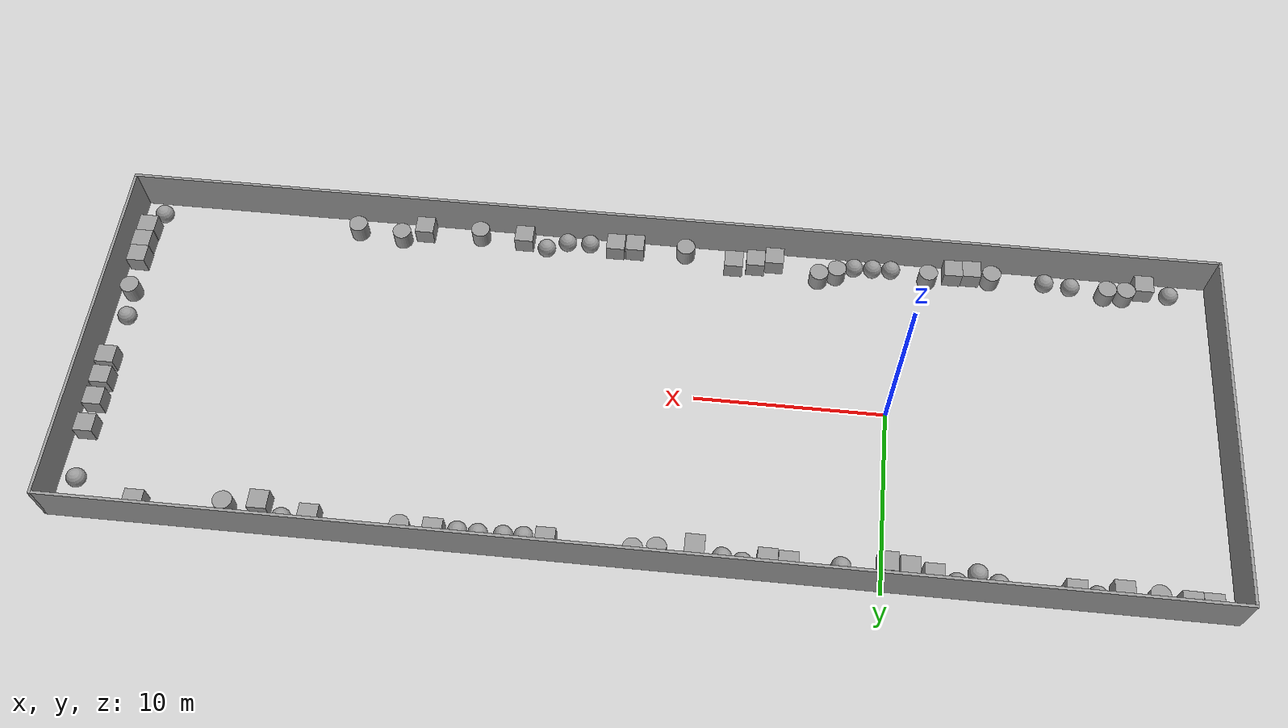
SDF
<sdf version="1.7">
 <world name="default">
  <light name="sun" type="directional">
   <pose>0 0 10 0 -0 0</pose>
   <diffuse>0.8 0.8 0.8 1</diffuse>
   <specular>0.2 0.2 0.2 1</specular>
   <attenuation>
    <range>1000</range>
    <constant>0.9</constant>
    <linear>0.01</linear>
    <quadratic>0.001</quadratic>
   </attenuation>
   <direction>-0.5 0.1 -0.9</direction>
   <spot><inner_angle>0</inner_angle><outer_angle>0</outer_angle><falloff>0</falloff></spot>
  </light>
  <model name="ground_plane">
   <static>1</static>
   <link name="link">
    <collision name="collision">
     <geometry><plane><normal>0 0 1</normal><size>100 100</size></plane></geometry>
     <surface>
      <contact><collide_bitmask>65535</collide_bitmask></contact>
      <friction><ode><mu>100</mu><mu2>50</mu2></ode></friction>
     </surface>
    </collision>
    <visual name="visual">
     <cast_shadows>0</cast_shadows>
     <geometry><plane><normal>0 0 1</normal><size>100 100</size></plane></geometry>
     <material>
      <script><uri>file://media/materials/scripts/gazebo.material</uri><name>Gazebo/Grey</name></script>
     </material>
    </visual>
   </link>
  </model>
  <gravity>0 0 -9.8</gravity>
  <magnetic_field>6e-06 2.3e-05 -4.2e-05</magnetic_field>
  <atmosphere type="adiabatic"/>
  <physics type="ode">
   <max_step_size>0.001</max_step_size>
   <real_time_factor>1</real_time_factor>
   <real_time_update_rate>1000</real_time_update_rate>
  </physics>
  <scene><ambient>0.4 0.4 0.4 1</ambient><background>0.7 0.7 0.7 1</background><shadows>1</shadows></scene>
  <spherical_coordinates>
   <surface_model>EARTH_WGS84</surface_model>
   <latitude_deg>0</latitude_deg>
   <longitude_deg>0</longitude_deg>
   <elevation>0</elevation>
   <heading_deg>0</heading_deg>
  </spherical_coordinates>
  <model name="big_empty">
   <pose>12.2902 0.0813 0 0 -0 0</pose>
   <link name="Wall_6">
    <collision name="Wall_6_Collision">
     <geometry><box><size>59.25 0.15 2.5</size></box></geometry>
     <pose>0 0 1.25 0 -0 0</pose>
    </collision>
    <visual name="Wall_6_Visual">
     <pose>0 0 1.25 0 -0 0</pose>
     <geometry><box><size>59.25 0.15 2.5</size></box></geometry>
     <material>
      <script><uri>file://media/materials/scripts/gazebo.material</uri><name>Gazebo/Grey</name></script>
      <ambient>1 1 1 1</ambient>
     </material>
     <meta><layer>0</layer></meta>
    </visual>
    <pose>-0 9.675 0 0 -0 0</pose>
   </link>
   <link name="Wall_7">
    <collision name="Wall_7_Collision">
     <geometry><box><size>19.5 0.15 2.5</size></box></geometry>
     <pose>0 0 1.25 0 -0 0</pose>
    </collision>
    <visual name="Wall_7_Visual">
     <pose>0 0 1.25 0 -0 0</pose>
     <geometry><box><size>19.5 0.15 2.5</size></box></geometry>
     <material>
      <script><uri>file://media/materials/scripts/gazebo.material</uri><name>Gazebo/Grey</name></script>
      <ambient>1 1 1 1</ambient>
     </material>
     <meta><layer>0</layer></meta>
    </visual>
    <pose>29.55 0 0 0 -0 -1.5708</pose>
   </link>
   <link name="Wall_8">
    <collision name="Wall_8_Collision">
     <geometry><box><size>59.25 0.15 2.5</size></box></geometry>
     <pose>0 0 1.25 0 -0 0</pose>
    </collision>
    <visual name="Wall_8_Visual">
     <pose>0 0 1.25 0 -0 0</pose>
     <geometry><box><size>59.25 0.15 2.5</size></box></geometry>
     <material>
      <script><uri>file://media/materials/scripts/gazebo.material</uri><name>Gazebo/Grey</name></script>
      <ambient>1 1 1 1</ambient>
     </material>
     <meta><layer>0</layer></meta>
    </visual>
    <pose>-0 -9.675 0 0 -0 3.14159</pose>
   </link>
   <link name="Wall_9">
    <collision name="Wall_9_Collision">
     <geometry><box><size>19.5 0.15 2.5</size></box></geometry>
     <pose>0 0 1.25 0 -0 0</pose>
    </collision>
    <visual name="Wall_9_Visual">
     <pose>0 0 1.25 0 -0 0</pose>
     <geometry><box><size>19.5 0.15 2.5</size></box></geometry>
     <material>
      <script><uri>file://media/materials/scripts/gazebo.material</uri><name>Gazebo/Grey</name></script>
      <ambient>1 1 1 1</ambient>
     </material>
     <meta><layer>0</layer></meta>
    </visual>
    <pose>-29.55 0 0 0 -0 1.5708</pose>
   </link>
   <static>1</static>
  </model>
  <model name="unit_sphere">
   <pose>-15.0549 -8.56888 0.5 0 -0 0</pose>
   <link name="link">
    <inertial>
     <mass>1</mass>
     <inertia><ixx>0.1</ixx><ixy>0</ixy><ixz>0</ixz><iyy>0.1</iyy><iyz>0</iyz><izz>0.1</izz></inertia>
    </inertial>
    <collision name="collision"><geometry><sphere><radius>0.5</radius></sphere></geometry></collision>
    <visual name="visual">
     <geometry><sphere><radius>0.5</radius></sphere></geometry>
     <material>
      <script><name>Gazebo/Grey</name><uri>file://media/materials/scripts/gazebo.material</uri></script>
     </material>
    </visual>
   </link>
  </model>
  <model name="unit_sphere_clone">
   <pose>-9.77617 -8.61735 0.5 0 -0 0</pose>
   <link name="link">
    <inertial>
     <mass>1</mass>
     <inertia><ixx>0.1</ixx><ixy>0</ixy><ixz>0</ixz><iyy>0.1</iyy><iyz>0</iyz><izz>0.1</izz></inertia>
    </inertial>
    <collision name="collision"><geometry><sphere><radius>0.5</radius></sphere></geometry></collision>
    <visual name="visual">
     <geometry><sphere><radius>0.5</radius></sphere></geometry>
     <material>
      <script><name>Gazebo/Grey</name><uri>file://media/materials/scripts/gazebo.material</uri></script>
     </material>
    </visual>
   </link>
  </model>
  <model name="unit_sphere_clone_0">
   <pose>-8.37955 -8.7271 0.5 0 -0 0</pose>
   <link name="link">
    <inertial>
     <mass>1</mass>
     <inertia><ixx>0.1</ixx><ixy>0</ixy><ixz>0</ixz><iyy>0.1</iyy><iyz>0</iyz><izz>0.1</izz></inertia>
    </inertial>
    <collision name="collision"><geometry><sphere><radius>0.5</radius></sphere></geometry></collision>
    <visual name="visual">
     <geometry><sphere><radius>0.5</radius></sphere></geometry>
     <material>
      <script><name>Gazebo/Grey</name><uri>file://media/materials/scripts/gazebo.material</uri></script>
     </material>
    </visual>
   </link>
  </model>
  <model name="unit_sphere_clone_1">
   <pose>-0.04792 -8.77374 0.5 0.000601 -0.018035 -1.9e-05</pose>
   <link name="link">
    <inertial>
     <mass>1</mass>
     <inertia><ixx>0.1</ixx><ixy>0</ixy><ixz>0</ixz><iyy>0.1</iyy><iyz>0</iyz><izz>0.1</izz></inertia>
    </inertial>
    <collision name="collision"><geometry><sphere><radius>0.5</radius></sphere></geometry></collision>
    <visual name="visual">
     <geometry><sphere><radius>0.5</radius></sphere></geometry>
     <material>
      <script><name>Gazebo/Grey</name><uri>file://media/materials/scripts/gazebo.material</uri></script>
     </material>
    </visual>
   </link>
  </model>
  <model name="unit_sphere_clone_2">
   <pose>0.955145 -8.74192 0.5 -7.4e-05 -0.001739 -4.2e-05</pose>
   <link name="link">
    <inertial>
     <mass>1</mass>
     <inertia><ixx>0.1</ixx><ixy>0</ixy><ixz>0</ixz><iyy>0.1</iyy><iyz>0</iyz><izz>0.1</izz></inertia>
    </inertial>
    <collision name="collision"><geometry><sphere><radius>0.5</radius></sphere></geometry></collision>
    <visual name="visual">
     <geometry><sphere><radius>0.5</radius></sphere></geometry>
     <material>
      <script><name>Gazebo/Grey</name><uri>file://media/materials/scripts/gazebo.material</uri></script>
     </material>
    </visual>
   </link>
  </model>
  <model name="unit_sphere_clone_3">
   <pose>1.96471 -8.71335 0.5 -0.0004 0.010287 -3e-05</pose>
   <link name="link">
    <inertial>
     <mass>1</mass>
     <inertia><ixx>0.1</ixx><ixy>0</ixy><ixz>0</ixz><iyy>0.1</iyy><iyz>0</iyz><izz>0.1</izz></inertia>
    </inertial>
    <collision name="collision"><geometry><sphere><radius>0.5</radius></sphere></geometry></collision>
    <visual name="visual">
     <geometry><sphere><radius>0.5</radius></sphere></geometry>
     <material>
      <script><name>Gazebo/Grey</name><uri>file://media/materials/scripts/gazebo.material</uri></script>
     </material>
    </visual>
   </link>
  </model>
  <model name="unit_sphere_clone_4">
   <pose>16.535 -8.86079 0.5 0 -0 0</pose>
   <link name="link">
    <inertial>
     <mass>1</mass>
     <inertia><ixx>0.1</ixx><ixy>0</ixy><ixz>0</ixz><iyy>0.1</iyy><iyz>0</iyz><izz>0.1</izz></inertia>
    </inertial>
    <collision name="collision"><geometry><sphere><radius>0.5</radius></sphere></geometry></collision>
    <visual name="visual">
     <geometry><sphere><radius>0.5</radius></sphere></geometry>
     <material>
      <script><name>Gazebo/Grey</name><uri>file://media/materials/scripts/gazebo.material</uri></script>
     </material>
    </visual>
   </link>
  </model>
  <model name="unit_sphere_clone_5">
   <pose>17.7918 -8.83107 0.5 0 -0 0</pose>
   <link name="link">
    <inertial>
     <mass>1</mass>
     <inertia><ixx>0.1</ixx><ixy>0</ixy><ixz>0</ixz><iyy>0.1</iyy><iyz>0</iyz><izz>0.1</izz></inertia>
    </inertial>
    <collision name="collision"><geometry><sphere><radius>0.5</radius></sphere></geometry></collision>
    <visual name="visual">
     <geometry><sphere><radius>0.5</radius></sphere></geometry>
     <material>
      <script><name>Gazebo/Grey</name><uri>file://media/materials/scripts/gazebo.material</uri></script>
     </material>
    </visual>
   </link>
  </model>
  <model name="unit_sphere_clone_6">
   <pose>18.8957 -8.34964 0.5 0 -0 0</pose>
   <link name="link">
    <inertial>
     <mass>1</mass>
     <inertia><ixx>0.1</ixx><ixy>0</ixy><ixz>0</ixz><iyy>0.1</iyy><iyz>0</iyz><izz>0.1</izz></inertia>
    </inertial>
    <collision name="collision"><geometry><sphere><radius>0.5</radius></sphere></geometry></collision>
    <visual name="visual">
     <geometry><sphere><radius>0.5</radius></sphere></geometry>
     <material>
      <script><name>Gazebo/Grey</name><uri>file://media/materials/scripts/gazebo.material</uri></script>
     </material>
    </visual>
   </link>
  </model>
  <model name="unit_sphere_clone_7">
   <pose>40.5129 -8.51497 0.5 0 -0 0</pose>
   <link name="link">
    <inertial>
     <mass>1</mass>
     <inertia><ixx>0.1</ixx><ixy>0</ixy><ixz>0</ixz><iyy>0.1</iyy><iyz>0</iyz><izz>0.1</izz></inertia>
    </inertial>
    <collision name="collision"><geometry><sphere><radius>0.5</radius></sphere></geometry></collision>
    <visual name="visual">
     <geometry><sphere><radius>0.5</radius></sphere></geometry>
     <material>
      <script><name>Gazebo/Grey</name><uri>file://media/materials/scripts/gazebo.material</uri></script>
     </material>
    </visual>
   </link>
  </model>
  <model name="unit_sphere_clone_8">
   <pose>40.7877 -1.75539 0.5 0 -0 0</pose>
   <link name="link">
    <inertial>
     <mass>1</mass>
     <inertia><ixx>0.1</ixx><ixy>0</ixy><ixz>0</ixz><iyy>0.1</iyy><iyz>0</iyz><izz>0.1</izz></inertia>
    </inertial>
    <collision name="collision"><geometry><sphere><radius>0.5</radius></sphere></geometry></collision>
    <visual name="visual">
     <geometry><sphere><radius>0.5</radius></sphere></geometry>
     <material>
      <script><name>Gazebo/Grey</name><uri>file://media/materials/scripts/gazebo.material</uri></script>
     </material>
    </visual>
   </link>
  </model>
  <model name="unit_sphere_clone_9">
   <pose>40.7231 7.91261 0.5 0 -0 0</pose>
   <link name="link">
    <inertial>
     <mass>1</mass>
     <inertia><ixx>0.1</ixx><ixy>0</ixy><ixz>0</ixz><iyy>0.1</iyy><iyz>0</iyz><izz>0.1</izz></inertia>
    </inertial>
    <collision name="collision"><geometry><sphere><radius>0.5</radius></sphere></geometry></collision>
    <visual name="visual">
     <geometry><sphere><radius>0.5</radius></sphere></geometry>
     <material>
      <script><name>Gazebo/Grey</name><uri>file://media/materials/scripts/gazebo.material</uri></script>
     </material>
    </visual>
   </link>
  </model>
  <model name="unit_sphere_clone_10">
   <pose>29.9219 9.03908 0.5 0 -0 0</pose>
   <link name="link">
    <inertial>
     <mass>1</mass>
     <inertia><ixx>0.1</ixx><ixy>0</ixy><ixz>0</ixz><iyy>0.1</iyy><iyz>0</iyz><izz>0.1</izz></inertia>
    </inertial>
    <collision name="collision"><geometry><sphere><radius>0.5</radius></sphere></geometry></collision>
    <visual name="visual">
     <geometry><sphere><radius>0.5</radius></sphere></geometry>
     <material>
      <script><name>Gazebo/Grey</name><uri>file://media/materials/scripts/gazebo.material</uri></script>
     </material>
    </visual>
   </link>
  </model>
  <model name="unit_sphere_clone_11">
   <pose>21.0639 8.8868 0.5 0 -0 0</pose>
   <link name="link">
    <inertial>
     <mass>1</mass>
     <inertia><ixx>0.1</ixx><ixy>0</ixy><ixz>0</ixz><iyy>0.1</iyy><iyz>0</iyz><izz>0.1</izz></inertia>
    </inertial>
    <collision name="collision"><geometry><sphere><radius>0.5</radius></sphere></geometry></collision>
    <visual name="visual">
     <geometry><sphere><radius>0.5</radius></sphere></geometry>
     <material>
      <script><name>Gazebo/Grey</name><uri>file://media/materials/scripts/gazebo.material</uri></script>
     </material>
    </visual>
   </link>
  </model>
  <model name="unit_sphere_clone_12">
   <pose>20.0298 8.91341 0.5 0 -0 0</pose>
   <link name="link">
    <inertial>
     <mass>1</mass>
     <inertia><ixx>0.1</ixx><ixy>0</ixy><ixz>0</ixz><iyy>0.1</iyy><iyz>0</iyz><izz>0.1</izz></inertia>
    </inertial>
    <collision name="collision"><geometry><sphere><radius>0.5</radius></sphere></geometry></collision>
    <visual name="visual">
     <geometry><sphere><radius>0.5</radius></sphere></geometry>
     <material>
      <script><name>Gazebo/Grey</name><uri>file://media/materials/scripts/gazebo.material</uri></script>
     </material>
    </visual>
   </link>
  </model>
  <model name="unit_sphere_clone_13">
   <pose>18.7604 8.88385 0.5 -0.000335 0.010044 -1.5e-05</pose>
   <link name="link">
    <inertial>
     <mass>1</mass>
     <inertia><ixx>0.1</ixx><ixy>0</ixy><ixz>0</ixz><iyy>0.1</iyy><iyz>0</iyz><izz>0.1</izz></inertia>
    </inertial>
    <collision name="collision"><geometry><sphere><radius>0.5</radius></sphere></geometry></collision>
    <visual name="visual">
     <geometry><sphere><radius>0.5</radius></sphere></geometry>
     <material>
      <script><name>Gazebo/Grey</name><uri>file://media/materials/scripts/gazebo.material</uri></script>
     </material>
    </visual>
   </link>
  </model>
  <model name="unit_sphere_clone_14">
   <pose>17.7509 8.85398 0.5 0.000353 -0.010007 -1.5e-05</pose>
   <link name="link">
    <inertial>
     <mass>1</mass>
     <inertia><ixx>0.1</ixx><ixy>0</ixy><ixz>0</ixz><iyy>0.1</iyy><iyz>0</iyz><izz>0.1</izz></inertia>
    </inertial>
    <collision name="collision"><geometry><sphere><radius>0.5</radius></sphere></geometry></collision>
    <visual name="visual">
     <geometry><sphere><radius>0.5</radius></sphere></geometry>
     <material>
      <script><name>Gazebo/Grey</name><uri>file://media/materials/scripts/gazebo.material</uri></script>
     </material>
    </visual>
   </link>
  </model>
  <model name="unit_sphere_clone_15">
   <pose>7.88446 8.97172 0.5 0.0017 0.009924 2.5e-05</pose>
   <link name="link">
    <inertial>
     <mass>1</mass>
     <inertia><ixx>0.1</ixx><ixy>0</ixy><ixz>0</ixz><iyy>0.1</iyy><iyz>0</iyz><izz>0.1</izz></inertia>
    </inertial>
    <collision name="collision"><geometry><sphere><radius>0.5</radius></sphere></geometry></collision>
    <visual name="visual">
     <geometry><sphere><radius>0.5</radius></sphere></geometry>
     <material>
      <script><name>Gazebo/Grey</name><uri>file://media/materials/scripts/gazebo.material</uri></script>
     </material>
    </visual>
   </link>
  </model>
  <model name="unit_sphere_clone_16">
   <pose>6.88897 9.14222 0.5 -0.0018 -0.009881 2.5e-05</pose>
   <link name="link">
    <inertial>
     <mass>1</mass>
     <inertia><ixx>0.1</ixx><ixy>0</ixy><ixz>0</ixz><iyy>0.1</iyy><iyz>0</iyz><izz>0.1</izz></inertia>
    </inertial>
    <collision name="collision"><geometry><sphere><radius>0.5</radius></sphere></geometry></collision>
    <visual name="visual">
     <geometry><sphere><radius>0.5</radius></sphere></geometry>
     <material>
      <script><name>Gazebo/Grey</name><uri>file://media/materials/scripts/gazebo.material</uri></script>
     </material>
    </visual>
   </link>
  </model>
  <model name="unit_sphere_clone_17">
   <pose>2.03575 8.89553 0.5 0 -0 0</pose>
   <link name="link">
    <inertial>
     <mass>1</mass>
     <inertia><ixx>0.1</ixx><ixy>0</ixy><ixz>0</ixz><iyy>0.1</iyy><iyz>0</iyz><izz>0.1</izz></inertia>
    </inertial>
    <collision name="collision"><geometry><sphere><radius>0.5</radius></sphere></geometry></collision>
    <visual name="visual">
     <geometry><sphere><radius>0.5</radius></sphere></geometry>
     <material>
      <script><name>Gazebo/Grey</name><uri>file://media/materials/scripts/gazebo.material</uri></script>
     </material>
    </visual>
   </link>
  </model>
  <model name="unit_sphere_clone_18">
   <pose>-4.64215 8.60716 0.5 0 -0 0</pose>
   <link name="link">
    <inertial>
     <mass>1</mass>
     <inertia><ixx>0.1</ixx><ixy>0</ixy><ixz>0</ixz><iyy>0.1</iyy><iyz>0</iyz><izz>0.1</izz></inertia>
    </inertial>
    <collision name="collision"><geometry><sphere><radius>0.5</radius></sphere></geometry></collision>
    <visual name="visual">
     <geometry><sphere><radius>0.5</radius></sphere></geometry>
     <material>
      <script><name>Gazebo/Grey</name><uri>file://media/materials/scripts/gazebo.material</uri></script>
     </material>
    </visual>
   </link>
  </model>
  <model name="unit_sphere_clone_19">
   <pose>-5.65356 9.04918 0.5 0 -0 0</pose>
   <link name="link">
    <inertial>
     <mass>1</mass>
     <inertia><ixx>0.1</ixx><ixy>0</ixy><ixz>0</ixz><iyy>0.1</iyy><iyz>0</iyz><izz>0.1</izz></inertia>
    </inertial>
    <collision name="collision"><geometry><sphere><radius>0.5</radius></sphere></geometry></collision>
    <visual name="visual">
     <geometry><sphere><radius>0.5</radius></sphere></geometry>
     <material>
      <script><name>Gazebo/Grey</name><uri>file://media/materials/scripts/gazebo.material</uri></script>
     </material>
    </visual>
   </link>
  </model>
  <model name="unit_sphere_clone_20">
   <pose>-3.61338 9.16349 0.5 0 -0 0</pose>
   <link name="link">
    <inertial>
     <mass>1</mass>
     <inertia><ixx>0.1</ixx><ixy>0</ixy><ixz>0</ixz><iyy>0.1</iyy><iyz>0</iyz><izz>0.1</izz></inertia>
    </inertial>
    <collision name="collision"><geometry><sphere><radius>0.5</radius></sphere></geometry></collision>
    <visual name="visual">
     <geometry><sphere><radius>0.5</radius></sphere></geometry>
     <material>
      <script><name>Gazebo/Grey</name><uri>file://media/materials/scripts/gazebo.material</uri></script>
     </material>
    </visual>
   </link>
  </model>
  <model name="unit_sphere_clone_21">
   <pose>-10.4035 9.17524 0.5 0.012164 -0 0</pose>
   <link name="link">
    <inertial>
     <mass>1</mass>
     <inertia><ixx>0.1</ixx><ixy>0</ixy><ixz>0</ixz><iyy>0.1</iyy><iyz>0</iyz><izz>0.1</izz></inertia>
    </inertial>
    <collision name="collision"><geometry><sphere><radius>0.5</radius></sphere></geometry></collision>
    <visual name="visual">
     <geometry><sphere><radius>0.5</radius></sphere></geometry>
     <material>
      <script><name>Gazebo/Grey</name><uri>file://media/materials/scripts/gazebo.material</uri></script>
     </material>
    </visual>
   </link>
  </model>
  <model name="unit_box">
   <pose>-15.8769 9.1813 0.5 0 -0 0</pose>
   <link name="link">
    <inertial>
     <mass>1</mass>
     <inertia>
      <ixx>0.166667</ixx>
      <ixy>0</ixy>
      <ixz>0</ixz>
      <iyy>0.166667</iyy>
      <iyz>0</iyz>
      <izz>0.166667</izz>
     </inertia>
    </inertial>
    <collision name="collision"><geometry><box><size>1 1 1</size></box></geometry></collision>
    <visual name="visual">
     <geometry><box><size>1 1 1</size></box></geometry>
     <material>
      <script><name>Gazebo/Grey</name><uri>file://media/materials/scripts/gazebo.material</uri></script>
     </material>
    </visual>
   </link>
  </model>
  <model name="unit_box_clone">
   <pose>-14.8592 9.17037 0.499995 -1e-05 0 0</pose>
   <link name="link">
    <inertial>
     <mass>1</mass>
     <inertia>
      <ixx>0.166667</ixx>
      <ixy>0</ixy>
      <ixz>0</ixz>
      <iyy>0.166667</iyy>
      <iyz>0</iyz>
      <izz>0.166667</izz>
     </inertia>
    </inertial>
    <collision name="collision"><geometry><box><size>1 1 1</size></box></geometry></collision>
    <visual name="visual">
     <geometry><box><size>1 1 1</size></box></geometry>
     <material>
      <script><name>Gazebo/Grey</name><uri>file://media/materials/scripts/gazebo.material</uri></script>
     </material>
    </visual>
   </link>
  </model>
  <model name="unit_box_clone_0">
   <pose>-11.631 8.92457 0.499995 0 1e-05 0</pose>
   <link name="link">
    <inertial>
     <mass>1</mass>
     <inertia>
      <ixx>0.166667</ixx>
      <ixy>0</ixy>
      <ixz>0</ixz>
      <iyy>0.166667</iyy>
      <iyz>0</iyz>
      <izz>0.166667</izz>
     </inertia>
    </inertial>
    <collision name="collision"><geometry><box><size>1 1 1</size></box></geometry></collision>
    <visual name="visual">
     <geometry><box><size>1 1 1</size></box></geometry>
     <material>
      <script><name>Gazebo/Grey</name><uri>file://media/materials/scripts/gazebo.material</uri></script>
     </material>
    </visual>
   </link>
  </model>
  <model name="unit_box_clone_1">
   <pose>-9.322 9.10862 0.499995 -1e-05 0 0</pose>
   <link name="link">
    <inertial>
     <mass>1</mass>
     <inertia>
      <ixx>0.166667</ixx>
      <ixy>0</ixy>
      <ixz>0</ixz>
      <iyy>0.166667</iyy>
      <iyz>0</iyz>
      <izz>0.166667</izz>
     </inertia>
    </inertial>
    <collision name="collision"><geometry><box><size>1 1 1</size></box></geometry></collision>
    <visual name="visual">
     <geometry><box><size>1 1 1</size></box></geometry>
     <material>
      <script><name>Gazebo/Grey</name><uri>file://media/materials/scripts/gazebo.material</uri></script>
     </material>
    </visual>
   </link>
  </model>
  <model name="unit_box_clone_2">
   <pose>-2.47354 8.95771 0.499995 0 1e-05 0</pose>
   <link name="link">
    <inertial>
     <mass>1</mass>
     <inertia>
      <ixx>0.166667</ixx>
      <ixy>0</ixy>
      <ixz>0</ixz>
      <iyy>0.166667</iyy>
      <iyz>0</iyz>
      <izz>0.166667</izz>
     </inertia>
    </inertial>
    <collision name="collision"><geometry><box><size>1 1 1</size></box></geometry></collision>
    <visual name="visual">
     <geometry><box><size>1 1 1</size></box></geometry>
     <material>
      <script><name>Gazebo/Grey</name><uri>file://media/materials/scripts/gazebo.material</uri></script>
     </material>
    </visual>
   </link>
  </model>
  <model name="unit_box_clone_3">
   <pose>-1.3046 8.68114 0.499995 -1e-05 0 0</pose>
   <link name="link">
    <inertial>
     <mass>1</mass>
     <inertia>
      <ixx>0.166667</ixx>
      <ixy>0</ixy>
      <ixz>0</ixz>
      <iyy>0.166667</iyy>
      <iyz>0</iyz>
      <izz>0.166667</izz>
     </inertia>
    </inertial>
    <collision name="collision"><geometry><box><size>1 1 1</size></box></geometry></collision>
    <visual name="visual">
     <geometry><box><size>1 1 1</size></box></geometry>
     <material>
      <script><name>Gazebo/Grey</name><uri>file://media/materials/scripts/gazebo.material</uri></script>
     </material>
    </visual>
   </link>
  </model>
  <model name="unit_box_clone_4">
   <pose>-0.227329 8.54356 0.499995 0 1e-05 0</pose>
   <link name="link">
    <inertial>
     <mass>1</mass>
     <inertia>
      <ixx>0.166667</ixx>
      <ixy>0</ixy>
      <ixz>0</ixz>
      <iyy>0.166667</iyy>
      <iyz>0</iyz>
      <izz>0.166667</izz>
     </inertia>
    </inertial>
    <collision name="collision"><geometry><box><size>1 1 1</size></box></geometry></collision>
    <visual name="visual">
     <geometry><box><size>1 1 1</size></box></geometry>
     <material>
      <script><name>Gazebo/Grey</name><uri>file://media/materials/scripts/gazebo.material</uri></script>
     </material>
    </visual>
   </link>
  </model>
  <model name="unit_box_clone_5">
   <pose>5.65694 8.9551 0.499995 -1e-05 0 0</pose>
   <link name="link">
    <inertial>
     <mass>1</mass>
     <inertia>
      <ixx>0.166667</ixx>
      <ixy>0</ixy>
      <ixz>0</ixz>
      <iyy>0.166667</iyy>
      <iyz>0</iyz>
      <izz>0.166667</izz>
     </inertia>
    </inertial>
    <collision name="collision"><geometry><box><size>1 1 1</size></box></geometry></collision>
    <visual name="visual">
     <geometry><box><size>1 1 1</size></box></geometry>
     <material>
      <script><name>Gazebo/Grey</name><uri>file://media/materials/scripts/gazebo.material</uri></script>
     </material>
    </visual>
   </link>
  </model>
  <model name="unit_box_clone_6">
   <pose>4.62735 9.02329 0.499995 0 1e-05 0</pose>
   <link name="link">
    <inertial>
     <mass>1</mass>
     <inertia>
      <ixx>0.166667</ixx>
      <ixy>0</ixy>
      <ixz>0</ixz>
      <iyy>0.166667</iyy>
      <iyz>0</iyz>
      <izz>0.166667</izz>
     </inertia>
    </inertial>
    <collision name="collision"><geometry><box><size>1 1 1</size></box></geometry></collision>
    <visual name="visual">
     <geometry><box><size>1 1 1</size></box></geometry>
     <material>
      <script><name>Gazebo/Grey</name><uri>file://media/materials/scripts/gazebo.material</uri></script>
     </material>
    </visual>
   </link>
  </model>
  <model name="unit_box_clone_7">
   <pose>9.26041 8.58456 0.499995 -1e-05 0 0</pose>
   <link name="link">
    <inertial>
     <mass>1</mass>
     <inertia>
      <ixx>0.166667</ixx>
      <ixy>0</ixy>
      <ixz>0</ixz>
      <iyy>0.166667</iyy>
      <iyz>0</iyz>
      <izz>0.166667</izz>
     </inertia>
    </inertial>
    <collision name="collision"><geometry><box><size>1 1 1</size></box></geometry></collision>
    <visual name="visual">
     <geometry><box><size>1 1 1</size></box></geometry>
     <material>
      <script><name>Gazebo/Grey</name><uri>file://media/materials/scripts/gazebo.material</uri></script>
     </material>
    </visual>
   </link>
  </model>
  <model name="unit_box_clone_8">
   <pose>16.6303 8.95251 0.499995 0 1e-05 0</pose>
   <link name="link">
    <inertial>
     <mass>1</mass>
     <inertia>
      <ixx>0.166667</ixx>
      <ixy>0</ixy>
      <ixz>0</ixz>
      <iyy>0.166667</iyy>
      <iyz>0</iyz>
      <izz>0.166667</izz>
     </inertia>
    </inertial>
    <collision name="collision"><geometry><box><size>1 1 1</size></box></geometry></collision>
    <visual name="visual">
     <geometry><box><size>1 1 1</size></box></geometry>
     <material>
      <script><name>Gazebo/Grey</name><uri>file://media/materials/scripts/gazebo.material</uri></script>
     </material>
    </visual>
   </link>
  </model>
  <model name="unit_box_clone_9">
   <pose>22.2513 9.01589 0.499995 -1e-05 0 0</pose>
   <link name="link">
    <inertial>
     <mass>1</mass>
     <inertia>
      <ixx>0.166667</ixx>
      <ixy>0</ixy>
      <ixz>0</ixz>
      <iyy>0.166667</iyy>
      <iyz>0</iyz>
      <izz>0.166667</izz>
     </inertia>
    </inertial>
    <collision name="collision"><geometry><box><size>1 1 1</size></box></geometry></collision>
    <visual name="visual">
     <geometry><box><size>1 1 1</size></box></geometry>
     <material>
      <script><name>Gazebo/Grey</name><uri>file://media/materials/scripts/gazebo.material</uri></script>
     </material>
    </visual>
   </link>
  </model>
  <model name="unit_box_clone_10">
   <pose>28.526 8.87042 0.499995 0 1e-05 0</pose>
   <link name="link">
    <inertial>
     <mass>1</mass>
     <inertia>
      <ixx>0.166667</ixx>
      <ixy>0</ixy>
      <ixz>0</ixz>
      <iyy>0.166667</iyy>
      <iyz>0</iyz>
      <izz>0.166667</izz>
     </inertia>
    </inertial>
    <collision name="collision"><geometry><box><size>1 1 1</size></box></geometry></collision>
    <visual name="visual">
     <geometry><box><size>1 1 1</size></box></geometry>
     <material>
      <script><name>Gazebo/Grey</name><uri>file://media/materials/scripts/gazebo.material</uri></script>
     </material>
    </visual>
   </link>
  </model>
  <model name="unit_box_clone_11">
   <pose>31.1421 8.35929 0.499995 -1e-05 0 0</pose>
   <link name="link">
    <inertial>
     <mass>1</mass>
     <inertia>
      <ixx>0.166667</ixx>
      <ixy>0</ixy>
      <ixz>0</ixz>
      <iyy>0.166667</iyy>
      <iyz>0</iyz>
      <izz>0.166667</izz>
     </inertia>
    </inertial>
    <collision name="collision"><geometry><box><size>1 1 1</size></box></geometry></collision>
    <visual name="visual">
     <geometry><box><size>1 1 1</size></box></geometry>
     <material>
      <script><name>Gazebo/Grey</name><uri>file://media/materials/scripts/gazebo.material</uri></script>
     </material>
    </visual>
   </link>
  </model>
  <model name="unit_box_clone_12">
   <pose>37.3899 8.95841 0.499995 0 1e-05 0</pose>
   <link name="link">
    <inertial>
     <mass>1</mass>
     <inertia>
      <ixx>0.166667</ixx>
      <ixy>0</ixy>
      <ixz>0</ixz>
      <iyy>0.166667</iyy>
      <iyz>0</iyz>
      <izz>0.166667</izz>
     </inertia>
    </inertial>
    <collision name="collision"><geometry><box><size>1 1 1</size></box></geometry></collision>
    <visual name="visual">
     <geometry><box><size>1 1 1</size></box></geometry>
     <material>
      <script><name>Gazebo/Grey</name><uri>file://media/materials/scripts/gazebo.material</uri></script>
     </material>
    </visual>
   </link>
  </model>
  <model name="unit_box_clone_13">
   <pose>41 5 0.499995 1e-05 -0 0</pose>
   <link name="link">
    <inertial>
     <mass>1</mass>
     <inertia>
      <ixx>0.166667</ixx>
      <ixy>0</ixy>
      <ixz>0</ixz>
      <iyy>0.166667</iyy>
      <iyz>0</iyz>
      <izz>0.166667</izz>
     </inertia>
    </inertial>
    <collision name="collision"><geometry><box><size>1 1 1</size></box></geometry></collision>
    <visual name="visual">
     <geometry><box><size>1 1 1</size></box></geometry>
     <material>
      <script><name>Gazebo/Grey</name><uri>file://media/materials/scripts/gazebo.material</uri></script>
     </material>
    </visual>
   </link>
  </model>
  <model name="unit_box_clone_14">
   <pose>41.0005 2.13763 0.499995 1e-05 -0 0</pose>
   <link name="link">
    <inertial>
     <mass>1</mass>
     <inertia>
      <ixx>0.166667</ixx>
      <ixy>0</ixy>
      <ixz>0</ixz>
      <iyy>0.166667</iyy>
      <iyz>0</iyz>
      <izz>0.166667</izz>
     </inertia>
    </inertial>
    <collision name="collision"><geometry><box><size>1 1 1</size></box></geometry></collision>
    <visual name="visual">
     <geometry><box><size>1 1 1</size></box></geometry>
     <material>
      <script><name>Gazebo/Grey</name><uri>file://media/materials/scripts/gazebo.material</uri></script>
     </material>
    </visual>
   </link>
  </model>
  <model name="unit_box_clone_15">
   <pose>41 3.43111 0.499995 0 1e-05 0</pose>
   <link name="link">
    <inertial>
     <mass>1</mass>
     <inertia>
      <ixx>0.166667</ixx>
      <ixy>0</ixy>
      <ixz>0</ixz>
      <iyy>0.166667</iyy>
      <iyz>0</iyz>
      <izz>0.166667</izz>
     </inertia>
    </inertial>
    <collision name="collision"><geometry><box><size>1 1 1</size></box></geometry></collision>
    <visual name="visual">
     <geometry><box><size>1 1 1</size></box></geometry>
     <material>
      <script><name>Gazebo/Grey</name><uri>file://media/materials/scripts/gazebo.material</uri></script>
     </material>
    </visual>
   </link>
  </model>
  <model name="unit_box_clone_16">
   <pose>41.0575 0.914108 0.499995 -1e-05 0 0</pose>
   <link name="link">
    <inertial>
     <mass>1</mass>
     <inertia>
      <ixx>0.166667</ixx>
      <ixy>0</ixy>
      <ixz>0</ixz>
      <iyy>0.166667</iyy>
      <iyz>0</iyz>
      <izz>0.166667</izz>
     </inertia>
    </inertial>
    <collision name="collision"><geometry><box><size>1 1 1</size></box></geometry></collision>
    <visual name="visual">
     <geometry><box><size>1 1 1</size></box></geometry>
     <material>
      <script><name>Gazebo/Grey</name><uri>file://media/materials/scripts/gazebo.material</uri></script>
     </material>
    </visual>
   </link>
  </model>
  <model name="unit_box_clone_17">
   <pose>41.1301 -5.51392 0.499995 1e-05 -0 -0.00605</pose>
   <link name="link">
    <inertial>
     <mass>1</mass>
     <inertia>
      <ixx>0.166667</ixx>
      <ixy>0</ixy>
      <ixz>0</ixz>
      <iyy>0.166667</iyy>
      <iyz>0</iyz>
      <izz>0.166667</izz>
     </inertia>
    </inertial>
    <collision name="collision"><geometry><box><size>1 1 1</size></box></geometry></collision>
    <visual name="visual">
     <geometry><box><size>1 1 1</size></box></geometry>
     <material>
      <script><name>Gazebo/Grey</name><uri>file://media/materials/scripts/gazebo.material</uri></script>
     </material>
    </visual>
   </link>
  </model>
  <model name="unit_box_clone_18">
   <pose>41.1534 -6.51427 0.5 1e-06 -0 -0.006051</pose>
   <link name="link">
    <inertial>
     <mass>1</mass>
     <inertia>
      <ixx>0.166667</ixx>
      <ixy>0</ixy>
      <ixz>0</ixz>
      <iyy>0.166667</iyy>
      <iyz>0</iyz>
      <izz>0.166667</izz>
     </inertia>
    </inertial>
    <collision name="collision"><geometry><box><size>1 1 1</size></box></geometry></collision>
    <visual name="visual">
     <geometry><box><size>1 1 1</size></box></geometry>
     <material>
      <script><name>Gazebo/Grey</name><uri>file://media/materials/scripts/gazebo.material</uri></script>
     </material>
    </visual>
   </link>
  </model>
  <model name="unit_box_clone_19">
   <pose>41.1146 -7.51407 0.5 -0 -0 -0.006076</pose>
   <link name="link">
    <inertial>
     <mass>1</mass>
     <inertia>
      <ixx>0.166667</ixx>
      <ixy>0</ixy>
      <ixz>0</ixz>
      <iyy>0.166667</iyy>
      <iyz>0</iyz>
      <izz>0.166667</izz>
     </inertia>
    </inertial>
    <collision name="collision"><geometry><box><size>1 1 1</size></box></geometry></collision>
    <visual name="visual">
     <geometry><box><size>1 1 1</size></box></geometry>
     <material>
      <script><name>Gazebo/Grey</name><uri>file://media/materials/scripts/gazebo.material</uri></script>
     </material>
    </visual>
   </link>
  </model>
  <model name="unit_box_clone_20">
   <pose>25.7368 -8.91911 0.499995 0 1e-05 0</pose>
   <link name="link">
    <inertial>
     <mass>1</mass>
     <inertia>
      <ixx>0.166667</ixx>
      <ixy>0</ixy>
      <ixz>0</ixz>
      <iyy>0.166667</iyy>
      <iyz>0</iyz>
      <izz>0.166667</izz>
     </inertia>
    </inertial>
    <collision name="collision"><geometry><box><size>1 1 1</size></box></geometry></collision>
    <visual name="visual">
     <geometry><box><size>1 1 1</size></box></geometry>
     <material>
      <script><name>Gazebo/Grey</name><uri>file://media/materials/scripts/gazebo.material</uri></script>
     </material>
    </visual>
   </link>
  </model>
  <model name="unit_box_clone_21">
   <pose>20.1794 -8.87691 0.499995 -1e-05 0 0</pose>
   <link name="link">
    <inertial>
     <mass>1</mass>
     <inertia>
      <ixx>0.166667</ixx>
      <ixy>0</ixy>
      <ixz>0</ixz>
      <iyy>0.166667</iyy>
      <iyz>0</iyz>
      <izz>0.166667</izz>
     </inertia>
    </inertial>
    <collision name="collision"><geometry><box><size>1 1 1</size></box></geometry></collision>
    <visual name="visual">
     <geometry><box><size>1 1 1</size></box></geometry>
     <material>
      <script><name>Gazebo/Grey</name><uri>file://media/materials/scripts/gazebo.material</uri></script>
     </material>
    </visual>
   </link>
  </model>
  <model name="unit_box_clone_22">
   <pose>15.0922 -8.84239 0.499995 0 -1e-05 0</pose>
   <link name="link">
    <inertial>
     <mass>1</mass>
     <inertia>
      <ixx>0.166667</ixx>
      <ixy>0</ixy>
      <ixz>0</ixz>
      <iyy>0.166667</iyy>
      <iyz>0</iyz>
      <izz>0.166667</izz>
     </inertia>
    </inertial>
    <collision name="collision"><geometry><box><size>1 1 1</size></box></geometry></collision>
    <visual name="visual">
     <geometry><box><size>1 1 1</size></box></geometry>
     <material>
      <script><name>Gazebo/Grey</name><uri>file://media/materials/scripts/gazebo.material</uri></script>
     </material>
    </visual>
   </link>
  </model>
  <model name="unit_box_clone_23">
   <pose>14.0359 -8.88551 0.499995 1e-05 -0 0</pose>
   <link name="link">
    <inertial>
     <mass>1</mass>
     <inertia>
      <ixx>0.166667</ixx>
      <ixy>0</ixy>
      <ixz>0</ixz>
      <iyy>0.166667</iyy>
      <iyz>0</iyz>
      <izz>0.166667</izz>
     </inertia>
    </inertial>
    <collision name="collision"><geometry><box><size>1 1 1</size></box></geometry></collision>
    <visual name="visual">
     <geometry><box><size>1 1 1</size></box></geometry>
     <material>
      <script><name>Gazebo/Grey</name><uri>file://media/materials/scripts/gazebo.material</uri></script>
     </material>
    </visual>
   </link>
  </model>
  <model name="unit_box_clone_24">
   <pose>6.34537 -8.77406 0.499995 0 1e-05 0</pose>
   <link name="link">
    <inertial>
     <mass>1</mass>
     <inertia>
      <ixx>0.166667</ixx>
      <ixy>0</ixy>
      <ixz>0</ixz>
      <iyy>0.166667</iyy>
      <iyz>0</iyz>
      <izz>0.166667</izz>
     </inertia>
    </inertial>
    <collision name="collision"><geometry><box><size>1 1 1</size></box></geometry></collision>
    <visual name="visual">
     <geometry><box><size>1 1 1</size></box></geometry>
     <material>
      <script><name>Gazebo/Grey</name><uri>file://media/materials/scripts/gazebo.material</uri></script>
     </material>
    </visual>
   </link>
  </model>
  <model name="unit_box_clone_25">
   <pose>7.35958 -8.53654 0.499995 0 1e-05 0</pose>
   <link name="link">
    <inertial>
     <mass>1</mass>
     <inertia>
      <ixx>0.166667</ixx>
      <ixy>0</ixy>
      <ixz>0</ixz>
      <iyy>0.166667</iyy>
      <iyz>0</iyz>
      <izz>0.166667</izz>
     </inertia>
    </inertial>
    <collision name="collision"><geometry><box><size>1 1 1</size></box></geometry></collision>
    <visual name="visual">
     <geometry><box><size>1 1 1</size></box></geometry>
     <material>
      <script><name>Gazebo/Grey</name><uri>file://media/materials/scripts/gazebo.material</uri></script>
     </material>
    </visual>
   </link>
  </model>
  <model name="unit_box_clone_26">
   <pose>8.5547 -8.36787 0.499995 -1e-05 0 0</pose>
   <link name="link">
    <inertial>
     <mass>1</mass>
     <inertia>
      <ixx>0.166667</ixx>
      <ixy>0</ixy>
      <ixz>0</ixz>
      <iyy>0.166667</iyy>
      <iyz>0</iyz>
      <izz>0.166667</izz>
     </inertia>
    </inertial>
    <collision name="collision"><geometry><box><size>1 1 1</size></box></geometry></collision>
    <visual name="visual">
     <geometry><box><size>1 1 1</size></box></geometry>
     <material>
      <script><name>Gazebo/Grey</name><uri>file://media/materials/scripts/gazebo.material</uri></script>
     </material>
    </visual>
   </link>
  </model>
  <model name="unit_box_clone_27">
   <pose>-3.38352 -8.9237 0.499995 -1e-05 -0 0.001518</pose>
   <link name="link">
    <inertial>
     <mass>1</mass>
     <inertia>
      <ixx>0.166667</ixx>
      <ixy>0</ixy>
      <ixz>0</ixz>
      <iyy>0.166667</iyy>
      <iyz>0</iyz>
      <izz>0.166667</izz>
     </inertia>
    </inertial>
    <collision name="collision"><geometry><box><size>1 1 1</size></box></geometry></collision>
    <visual name="visual">
     <geometry><box><size>1 1 1</size></box></geometry>
     <material>
      <script><name>Gazebo/Grey</name><uri>file://media/materials/scripts/gazebo.material</uri></script>
     </material>
    </visual>
   </link>
  </model>
  <model name="unit_box_clone_28">
   <pose>-4.38347 -8.96824 0.499995 -0 1e-05 0.001529</pose>
   <link name="link">
    <inertial>
     <mass>1</mass>
     <inertia>
      <ixx>0.166667</ixx>
      <ixy>0</ixy>
      <ixz>0</ixz>
      <iyy>0.166667</iyy>
      <iyz>0</iyz>
      <izz>0.166667</izz>
     </inertia>
    </inertial>
    <collision name="collision"><geometry><box><size>1 1 1</size></box></geometry></collision>
    <visual name="visual">
     <geometry><box><size>1 1 1</size></box></geometry>
     <material>
      <script><name>Gazebo/Grey</name><uri>file://media/materials/scripts/gazebo.material</uri></script>
     </material>
    </visual>
   </link>
  </model>
  <model name="unit_box_clone_29">
   <pose>-13.6632 -8.93031 0.499995 0 1e-05 3.1e-05</pose>
   <link name="link">
    <inertial>
     <mass>1</mass>
     <inertia>
      <ixx>0.166667</ixx>
      <ixy>0</ixy>
      <ixz>0</ixz>
      <iyy>0.166667</iyy>
      <iyz>0</iyz>
      <izz>0.166667</izz>
     </inertia>
    </inertial>
    <collision name="collision"><geometry><box><size>1 1 1</size></box></geometry></collision>
    <visual name="visual">
     <geometry><box><size>1 1 1</size></box></geometry>
     <material>
      <script><name>Gazebo/Grey</name><uri>file://media/materials/scripts/gazebo.material</uri></script>
     </material>
    </visual>
   </link>
  </model>
  <model name="unit_cylinder">
   <pose>-12.663 -8.4147 0.499994 -4e-06 -3e-06 0.000534</pose>
   <link name="link">
    <inertial>
     <mass>1</mass>
     <inertia><ixx>0.145833</ixx><ixy>0</ixy><ixz>0</ixz><iyy>0.145833</iyy><iyz>0</iyz><izz>0.125</izz></inertia>
    </inertial>
    <collision name="collision">
     <geometry><cylinder><radius>0.5</radius><length>1</length></cylinder></geometry>
    </collision>
    <visual name="visual">
     <geometry><cylinder><radius>0.5</radius><length>1</length></cylinder></geometry>
     <material>
      <script><name>Gazebo/Grey</name><uri>file://media/materials/scripts/gazebo.material</uri></script>
     </material>
    </visual>
   </link>
  </model>
  <model name="unit_cylinder_clone">
   <pose>-11.6631 -8.39923 0.499994 -1e-06 -1e-06 -0.000529</pose>
   <link name="link">
    <inertial>
     <mass>1</mass>
     <inertia><ixx>0.145833</ixx><ixy>0</ixy><ixz>0</ixz><iyy>0.145833</iyy><iyz>0</iyz><izz>0.125</izz></inertia>
    </inertial>
    <collision name="collision">
     <geometry><cylinder><radius>0.5</radius><length>1</length></cylinder></geometry>
    </collision>
    <visual name="visual">
     <geometry><cylinder><radius>0.5</radius><length>1</length></cylinder></geometry>
     <material>
      <script><name>Gazebo/Grey</name><uri>file://media/materials/scripts/gazebo.material</uri></script>
     </material>
    </visual>
   </link>
  </model>
  <model name="unit_cylinder_clone_0">
   <pose>-5.46292 -8.7799 0.499998 3e-06 -3e-06 0</pose>
   <link name="link">
    <inertial>
     <mass>1</mass>
     <inertia><ixx>0.145833</ixx><ixy>0</ixy><ixz>0</ixz><iyy>0.145833</iyy><iyz>0</iyz><izz>0.125</izz></inertia>
    </inertial>
    <collision name="collision">
     <geometry><cylinder><radius>0.5</radius><length>1</length></cylinder></geometry>
    </collision>
    <visual name="visual">
     <geometry><cylinder><radius>0.5</radius><length>1</length></cylinder></geometry>
     <material>
      <script><name>Gazebo/Grey</name><uri>file://media/materials/scripts/gazebo.material</uri></script>
     </material>
    </visual>
   </link>
  </model>
  <model name="unit_cylinder_clone_1">
   <pose>-2.04396 -8.51089 0.499998 3e-06 -3e-06 0</pose>
   <link name="link">
    <inertial>
     <mass>1</mass>
     <inertia><ixx>0.145833</ixx><ixy>0</ixy><ixz>0</ixz><iyy>0.145833</iyy><iyz>0</iyz><izz>0.125</izz></inertia>
    </inertial>
    <collision name="collision">
     <geometry><cylinder><radius>0.5</radius><length>1</length></cylinder></geometry>
    </collision>
    <visual name="visual">
     <geometry><cylinder><radius>0.5</radius><length>1</length></cylinder></geometry>
     <material>
      <script><name>Gazebo/Grey</name><uri>file://media/materials/scripts/gazebo.material</uri></script>
     </material>
    </visual>
   </link>
  </model>
  <model name="unit_cylinder_clone_2">
   <pose>2.92018 -8.28873 0.499998 3e-06 -3e-06 0</pose>
   <link name="link">
    <inertial>
     <mass>1</mass>
     <inertia><ixx>0.145833</ixx><ixy>0</ixy><ixz>0</ixz><iyy>0.145833</iyy><iyz>0</iyz><izz>0.125</izz></inertia>
    </inertial>
    <collision name="collision">
     <geometry><cylinder><radius>0.5</radius><length>1</length></cylinder></geometry>
    </collision>
    <visual name="visual">
     <geometry><cylinder><radius>0.5</radius><length>1</length></cylinder></geometry>
     <material>
      <script><name>Gazebo/Grey</name><uri>file://media/materials/scripts/gazebo.material</uri></script>
     </material>
    </visual>
   </link>
  </model>
  <model name="unit_cylinder_clone_3">
   <pose>3.87879 -7.95369 0.499992 -3e-06 3e-06 0</pose>
   <link name="link">
    <inertial>
     <mass>1</mass>
     <inertia><ixx>0.145833</ixx><ixy>0</ixy><ixz>0</ixz><iyy>0.145833</iyy><iyz>0</iyz><izz>0.125</izz></inertia>
    </inertial>
    <collision name="collision">
     <geometry><cylinder><radius>0.5</radius><length>1</length></cylinder></geometry>
    </collision>
    <visual name="visual">
     <geometry><cylinder><radius>0.5</radius><length>1</length></cylinder></geometry>
     <material>
      <script><name>Gazebo/Grey</name><uri>file://media/materials/scripts/gazebo.material</uri></script>
     </material>
    </visual>
   </link>
  </model>
  <model name="unit_cylinder_clone_4">
   <pose>11.232 -8.88618 0.499992 -3e-06 3e-06 0</pose>
   <link name="link">
    <inertial>
     <mass>1</mass>
     <inertia><ixx>0.145833</ixx><ixy>0</ixy><ixz>0</ixz><iyy>0.145833</iyy><iyz>0</iyz><izz>0.125</izz></inertia>
    </inertial>
    <collision name="collision">
     <geometry><cylinder><radius>0.5</radius><length>1</length></cylinder></geometry>
    </collision>
    <visual name="visual">
     <geometry><cylinder><radius>0.5</radius><length>1</length></cylinder></geometry>
     <material>
      <script><name>Gazebo/Grey</name><uri>file://media/materials/scripts/gazebo.material</uri></script>
     </material>
    </visual>
   </link>
  </model>
  <model name="unit_cylinder_clone_5">
   <pose>22.6507 -8.92421 0.499998 3e-06 -4e-06 0</pose>
   <link name="link">
    <inertial>
     <mass>1</mass>
     <inertia><ixx>0.145833</ixx><ixy>0</ixy><ixz>0</ixz><iyy>0.145833</iyy><iyz>0</iyz><izz>0.125</izz></inertia>
    </inertial>
    <collision name="collision">
     <geometry><cylinder><radius>0.5</radius><length>1</length></cylinder></geometry>
    </collision>
    <visual name="visual">
     <geometry><cylinder><radius>0.5</radius><length>1</length></cylinder></geometry>
     <material>
      <script><name>Gazebo/Grey</name><uri>file://media/materials/scripts/gazebo.material</uri></script>
     </material>
    </visual>
   </link>
  </model>
  <model name="unit_cylinder_clone_6">
   <pose>29.4507 -8.62356 0.499998 3e-06 -4e-06 0</pose>
   <link name="link">
    <inertial>
     <mass>1</mass>
     <inertia><ixx>0.145833</ixx><ixy>0</ixy><ixz>0</ixz><iyy>0.145833</iyy><iyz>0</iyz><izz>0.125</izz></inertia>
    </inertial>
    <collision name="collision">
     <geometry><cylinder><radius>0.5</radius><length>1</length></cylinder></geometry>
    </collision>
    <visual name="visual">
     <geometry><cylinder><radius>0.5</radius><length>1</length></cylinder></geometry>
     <material>
      <script><name>Gazebo/Grey</name><uri>file://media/materials/scripts/gazebo.material</uri></script>
     </material>
    </visual>
   </link>
  </model>
  <model name="unit_cylinder_clone_7">
   <pose>26.9625 -8.37691 0.499992 -3e-06 4e-06 0</pose>
   <link name="link">
    <inertial>
     <mass>1</mass>
     <inertia><ixx>0.145833</ixx><ixy>0</ixy><ixz>0</ixz><iyy>0.145833</iyy><iyz>0</iyz><izz>0.125</izz></inertia>
    </inertial>
    <collision name="collision">
     <geometry><cylinder><radius>0.5</radius><length>1</length></cylinder></geometry>
    </collision>
    <visual name="visual">
     <geometry><cylinder><radius>0.5</radius><length>1</length></cylinder></geometry>
     <material>
      <script><name>Gazebo/Grey</name><uri>file://media/materials/scripts/gazebo.material</uri></script>
     </material>
    </visual>
   </link>
  </model>
  <model name="unit_cylinder_clone_8">
   <pose>41 -3.45139 0.499998 3e-06 4e-06 0.000534</pose>
   <link name="link">
    <inertial>
     <mass>1</mass>
     <inertia><ixx>0.145833</ixx><ixy>0</ixy><ixz>0</ixz><iyy>0.145833</iyy><iyz>0</iyz><izz>0.125</izz></inertia>
    </inertial>
    <collision name="collision">
     <geometry><cylinder><radius>0.5</radius><length>1</length></cylinder></geometry>
    </collision>
    <visual name="visual">
     <geometry><cylinder><radius>0.5</radius><length>1</length></cylinder></geometry>
     <material>
      <script><name>Gazebo/Grey</name><uri>file://media/materials/scripts/gazebo.material</uri></script>
     </material>
    </visual>
   </link>
  </model>
  <model name="unit_cylinder_clone_9">
   <pose>32.9035 8.60015 0.499996 4e-06 2e-06 0.000534</pose>
   <link name="link">
    <inertial>
     <mass>1</mass>
     <inertia><ixx>0.145833</ixx><ixy>0</ixy><ixz>0</ixz><iyy>0.145833</iyy><iyz>0</iyz><izz>0.125</izz></inertia>
    </inertial>
    <collision name="collision">
     <geometry><cylinder><radius>0.5</radius><length>1</length></cylinder></geometry>
    </collision>
    <visual name="visual">
     <geometry><cylinder><radius>0.5</radius><length>1</length></cylinder></geometry>
     <material>
      <script><name>Gazebo/Grey</name><uri>file://media/materials/scripts/gazebo.material</uri></script>
     </material>
    </visual>
   </link>
  </model>
  <model name="unit_cylinder_clone_10">
   <pose>23.8989 8.98983 0.499996 4e-06 3e-06 0.000534</pose>
   <link name="link">
    <inertial>
     <mass>1</mass>
     <inertia><ixx>0.145833</ixx><ixy>0</ixy><ixz>0</ixz><iyy>0.145833</iyy><iyz>0</iyz><izz>0.125</izz></inertia>
    </inertial>
    <collision name="collision">
     <geometry><cylinder><radius>0.5</radius><length>1</length></cylinder></geometry>
    </collision>
    <visual name="visual">
     <geometry><cylinder><radius>0.5</radius><length>1</length></cylinder></geometry>
     <material>
      <script><name>Gazebo/Grey</name><uri>file://media/materials/scripts/gazebo.material</uri></script>
     </material>
    </visual>
   </link>
  </model>
  <model name="unit_cylinder_clone_11">
   <pose>11.1148 8.93443 0.499997 3e-06 4e-06 0.000534</pose>
   <link name="link">
    <inertial>
     <mass>1</mass>
     <inertia><ixx>0.145833</ixx><ixy>0</ixy><ixz>0</ixz><iyy>0.145833</iyy><iyz>0</iyz><izz>0.125</izz></inertia>
    </inertial>
    <collision name="collision">
     <geometry><cylinder><radius>0.5</radius><length>1</length></cylinder></geometry>
    </collision>
    <visual name="visual">
     <geometry><cylinder><radius>0.5</radius><length>1</length></cylinder></geometry>
     <material>
      <script><name>Gazebo/Grey</name><uri>file://media/materials/scripts/gazebo.material</uri></script>
     </material>
    </visual>
   </link>
  </model>
  <model name="unit_cylinder_clone_12">
   <pose>12.2932 9.08784 0.499993 -3e-06 -4e-06 0.000534</pose>
   <link name="link">
    <inertial>
     <mass>1</mass>
     <inertia><ixx>0.145833</ixx><ixy>0</ixy><ixz>0</ixz><iyy>0.145833</iyy><iyz>0</iyz><izz>0.125</izz></inertia>
    </inertial>
    <collision name="collision">
     <geometry><cylinder><radius>0.5</radius><length>1</length></cylinder></geometry>
    </collision>
    <visual name="visual">
     <geometry><cylinder><radius>0.5</radius><length>1</length></cylinder></geometry>
     <material>
      <script><name>Gazebo/Grey</name><uri>file://media/materials/scripts/gazebo.material</uri></script>
     </material>
    </visual>
   </link>
  </model>
  <model name="unit_cylinder_clone_13">
   <pose>-13.316 8.99151 0.499993 -4e-06 -3e-06 0.000534</pose>
   <link name="link">
    <inertial>
     <mass>1</mass>
     <inertia><ixx>0.145833</ixx><ixy>0</ixy><ixz>0</ixz><iyy>0.145833</iyy><iyz>0</iyz><izz>0.125</izz></inertia>
    </inertial>
    <collision name="collision">
     <geometry><cylinder><radius>0.5</radius><length>1</length></cylinder></geometry>
    </collision>
    <visual name="visual">
     <geometry><cylinder><radius>0.5</radius><length>1</length></cylinder></geometry>
     <material>
      <script><name>Gazebo/Grey</name><uri>file://media/materials/scripts/gazebo.material</uri></script>
     </material>
    </visual>
   </link>
  </model>
 </world>
</sdf>
